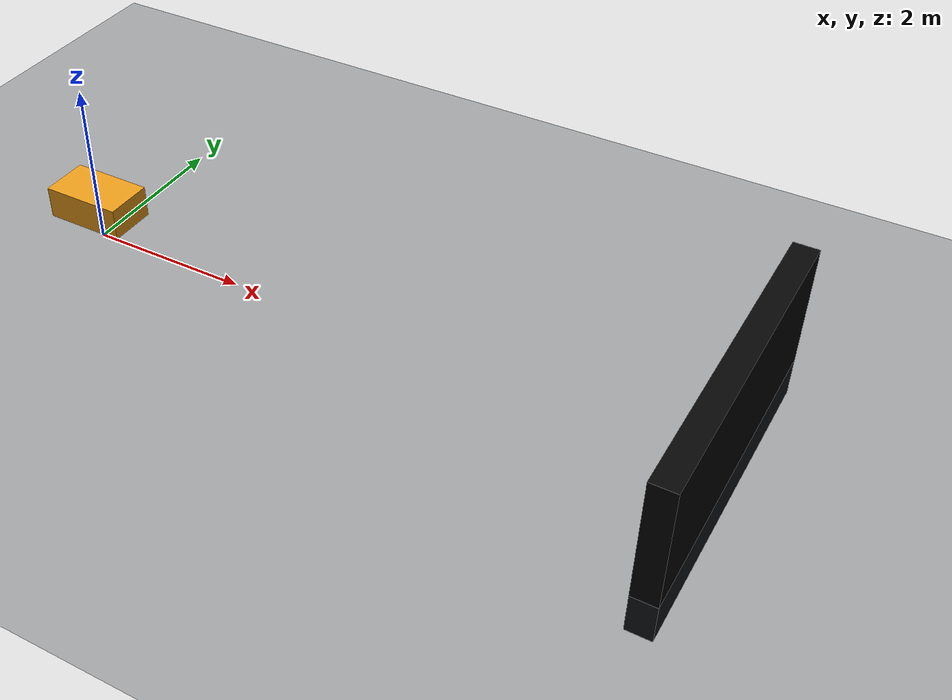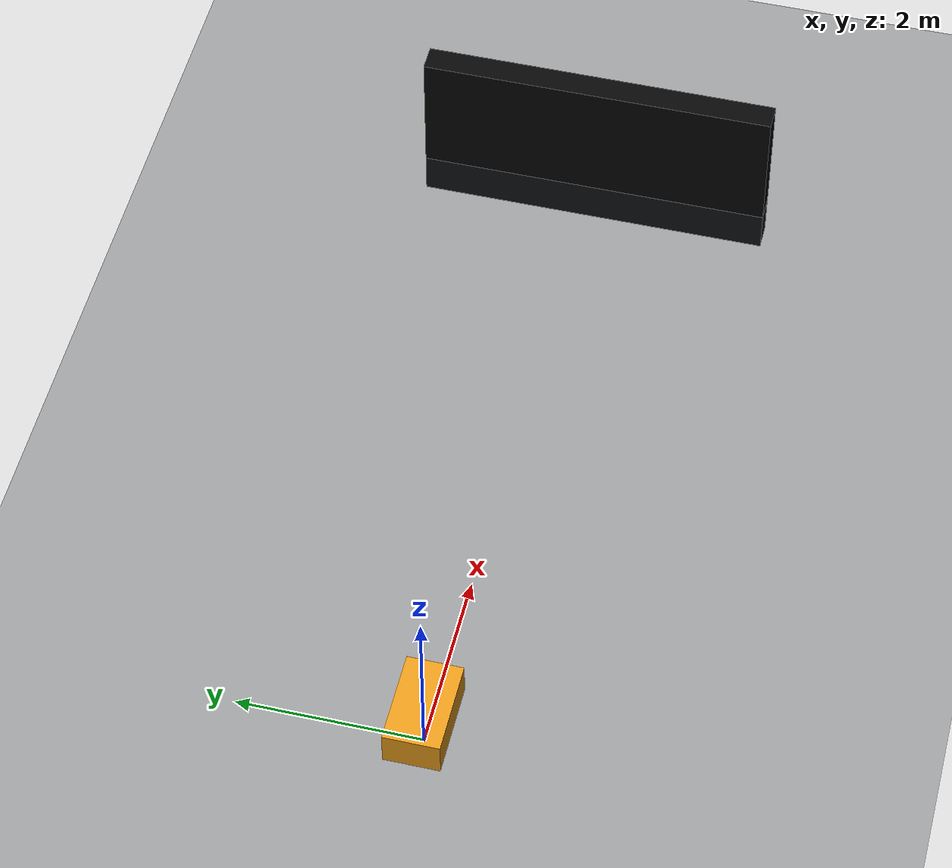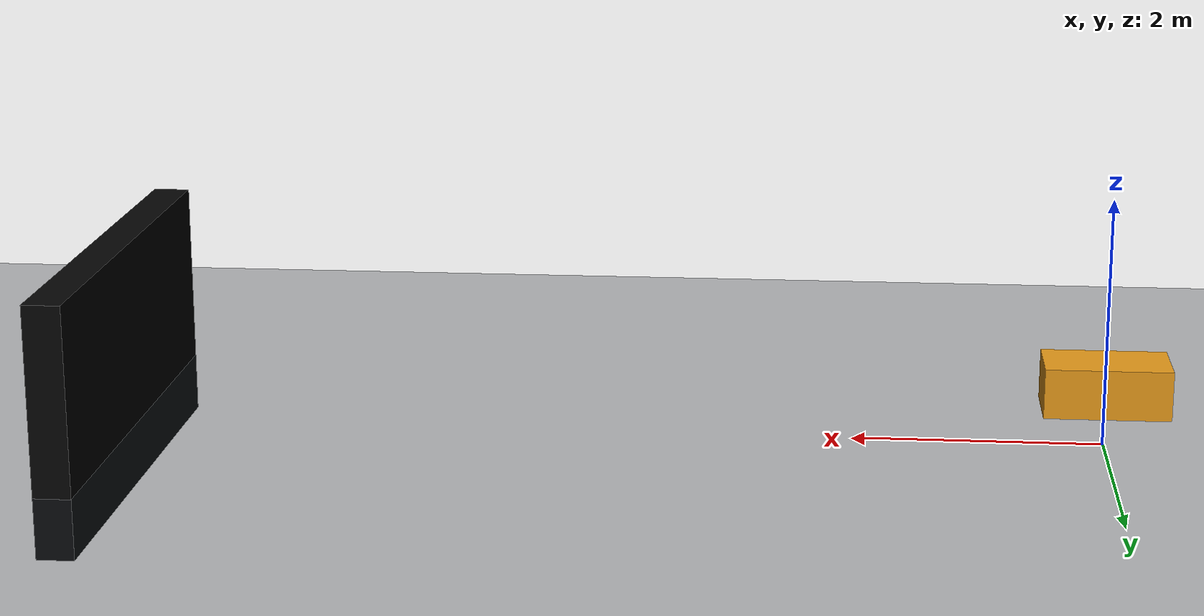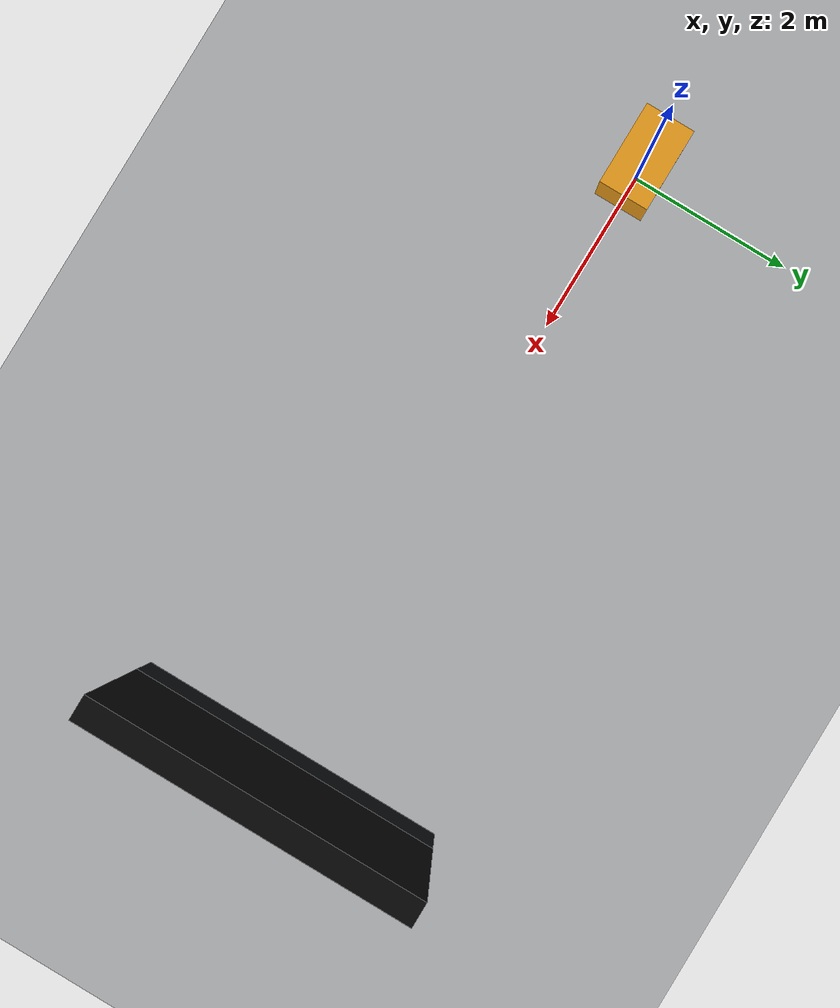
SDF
<?xml version="1.0"?>
<sdf version="1.7">
  <world name="underwater">
    <!-- 关闭重力，使 set_model_state 速度控制更稳定（AUV 不会持续下沉） -->
    <gravity>0 0 0</gravity>

    <physics type="ode">
      <real_time_update_rate>1000</real_time_update_rate>
      <max_step_size>0.001</max_step_size>
    </physics>

    <!-- 水下雾效与暗色背景，模拟浑浊水体 -->
    <scene>
      <ambient>0.12 0.12 0.16 1</ambient>
      <background>0.05 0.09 0.14 1</background>
      <fog>
        <color>0.45 0.55 0.6 1</color>
        <type>linear</type>
        <density>0.02</density>
        <start>1.0</start>
        <end>25.0</end>
      </fog>
    </scene>

    <!-- 水下光照（关闭阴影以降低开销） -->
    <light type="directional" name="sun">
      <cast_shadows>false</cast_shadows>
      <diffuse>0.6 0.7 0.85 1</diffuse>
      <specular>0.2 0.2 0.2 1</specular>
      <direction>0.3 -0.4 -1</direction>
    </light>

    <!-- Gazebo-ROS 桥接插件：提供 /gazebo/set_model_state 等服务 -->
    <plugin name="gazebo_ros_api_plugin" filename="libgazebo_ros_api_plugin.so"/>

    <!-- 海底地面 -->
    <model name="ground_plane">
      <static>true</static>
      <link name="link">
        <collision name="collision">
          <geometry><plane><normal>0 0 1</normal></plane></geometry>
        </collision>
        <visual name="visual">
          <geometry><plane><normal>0 0 1</normal><size>100 100</size></plane></geometry>
          <material><ambient>0.10 0.12 0.15 1</ambient></material>
        </visual>
      </link>
    </model>

    <!-- AUV 模型（名称必须为 'auv'，与 auv_vel_ctrl 默认 model_name 一致） -->
    <model name="auv">
      <pose>0 0 0.5 0 0 0</pose>
      <link name="chassis">
        <collision name="coll">
          <geometry><box><size>1.0 0.6 0.4</size></box></geometry>
        </collision>
        <visual name="vis">
          <geometry><box><size>1.0 0.6 0.4</size></box></geometry>
          <material><diffuse>0.9 0.6 0.1 1</diffuse></material>
        </visual>
        <!-- 前向相机：cameraName=auv/camera -> 图像话题 /auv/camera/image_raw -->
        <sensor name="camera" type="camera">
          <pose>0.5 0 0.1 0 1.5708 0</pose>
          <camera>
            <horizontal_fov>1.047</horizontal_fov>
            <image><width>640</width><height>480</height></image>
            <clip><near>0.1</near><far>50</far></clip>
          </camera>
          <plugin name="camera_controller" filename="libgazebo_ros_camera.so">
            <cameraName>auv/camera</cameraName>
            <imageTopicName>image_raw</imageTopicName>
            <updateRate>15.0</updateRate>
            <frameName>auv/camera</frameName>
          </plugin>
        </sensor>
      </link>
    </model>

    <!-- 前方暗色障碍墙：用于视觉避障演示（灰度极低，被 obstacle_avoid 识别） -->
    <model name="obstacle_wall">
      <static>true</static>
      <pose>8 0 0.5 0 0 0</pose>
      <link name="link">
        <collision name="coll">
          <geometry><box><size>0.3 4 2</size></box></geometry>
        </collision>
        <visual name="vis">
          <geometry><box><size>0.3 4 2</size></box></geometry>
          <material><diffuse>0.02 0.02 0.02 1</diffuse></material>
        </visual>
      </link>
    </model>
  </world>
</sdf>
